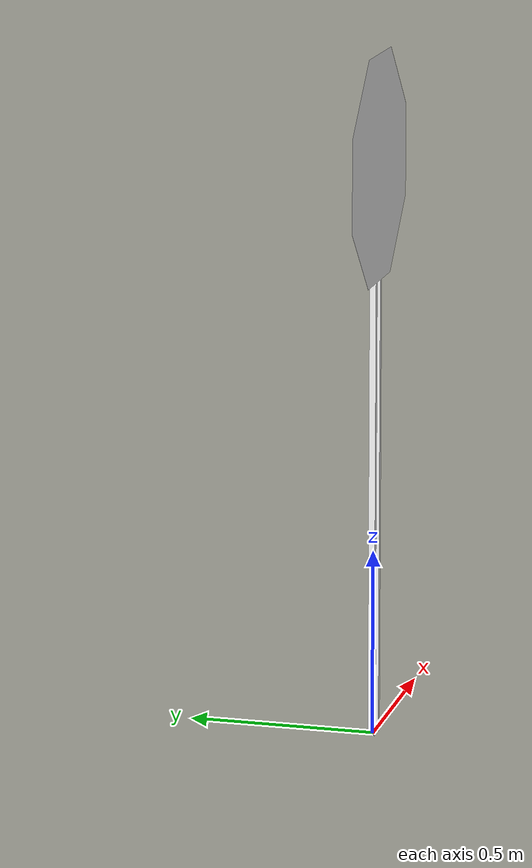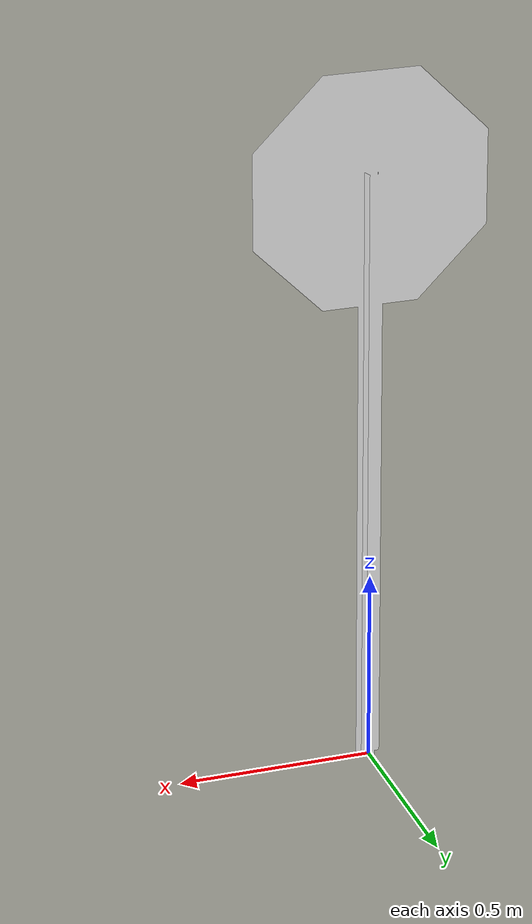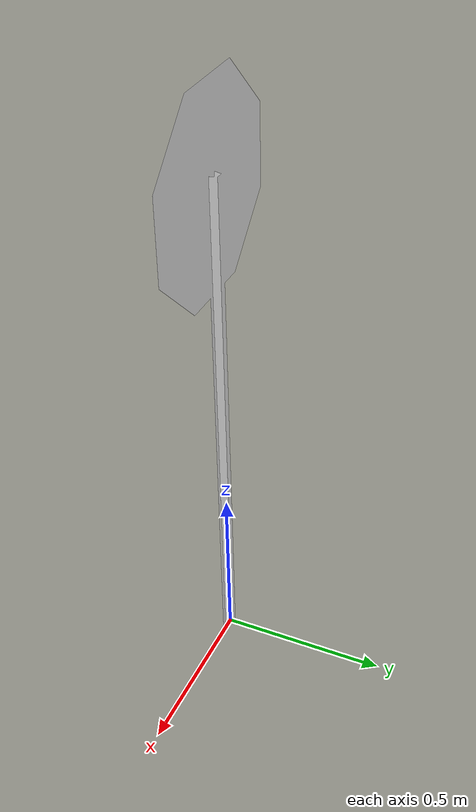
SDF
<?xml version="1.0" ?>
<sdf version="1.6">
    <model name="Stop Sign">
        <static>true</static>
        <link name="link">
            <collision name="collision">
                <geometry>
                    <mesh>
                        <uri>model://stop_sign/meshes/stop_sign.dae</uri>
                    </mesh>
                </geometry>
            </collision>
            <visual name="visual">
                <geometry>
                    <mesh>
                        <uri>model://stop_sign/meshes/stop_sign.dae</uri>
                    </mesh>
                </geometry>
                <material>
                    <ambient>1 1 1 1</ambient>
                    <diffuse>1 1 1 1</diffuse>
                    <specular>0.05 0.05 0.05 1</specular>
                    <emissive>0 0 0 1</emissive>
                    <pbr>
                        <metal>
                            <albedo_map>model://stop_sign/materials/textures/StopSign_Diffuse.png</albedo_map>
                            <metalness>0.0</metalness>
                            <roughness>0.9</roughness>
                        </metal>
                    </pbr>
                </material>
            </visual>
        </link>
    </model>
</sdf>
